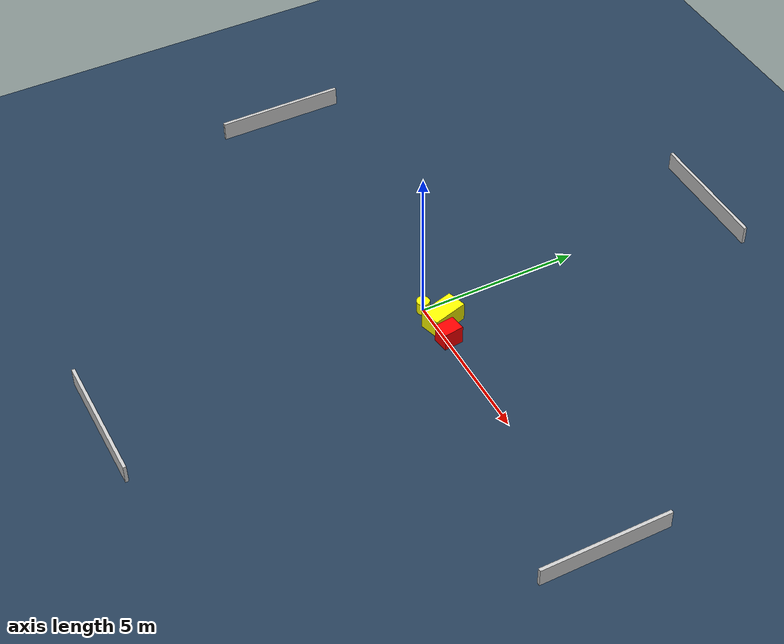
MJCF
<?xml version="1.0" ?>
<mujoco model="generated_environment">
  <option timestep="0.01" integrator="RK4" cone="elliptic"/>
  <default>
    <geom density="1"/>
  </default>
  <asset>
    <texture builtin="gradient" height="3072" name="skybox" rgb1="0.3 0.5 0.7" rgb2="0 0 0" type="skybox" width="512"/>
    <texture builtin="checker" height="300" name="groundplane" rgb1="0.2 0.3 0.4" rgb2="0.1 0.2 0.3" type="2d" width="300"/>
    <material name="groundplane" reflectance="0.2" texrepeat="5 5" texture="groundplane"/>
  </asset>
  <worldbody>
    <light dir="0 0 -1" directional="true" pos="0 0 1.5"/>
    <geom condim="3" friction="0.5 0.005 0.001" material="groundplane" name="floor" pos="0 0 0" size="0 0 0.05" type="plane"/>
    <body name="walls">
      <geom name="wall_1" condim="4" pos="-10.0 0.0 0.3" rgba="0.800000011920929 0.800000011920929 0.800000011920929 1.0" size="0.05 2.0 0.3" type="box"/>
      <geom name="wall_2" condim="4" pos="10.0 0.0 0.3" rgba="0.800000011920929 0.800000011920929 0.800000011920929 1.0" size="0.05 2.0 0.3" type="box"/>
      <geom name="wall_3" condim="4" pos="0.0 -10.0 0.3" rgba="0.800000011920929 0.800000011920929 0.800000011920929 1.0" size="2.0 0.05 0.3" type="box"/>
      <geom name="wall_4" condim="4" pos="0.0 10.0 0.3" rgba="0.800000011920929 0.800000011920929 0.800000011920929 1.0" size="2.0 0.05 0.3" type="box"/>
    </body>
    <body name="robot">
      <joint name="joint_x" type="slide" pos="0 0 0" axis="1 0 0"/>
      <joint name="joint_y" type="slide" pos="0 0 0" axis="0 1 0"/>
      <geom name="robot" type="cylinder" pos="0.0 0.0 0.2" size="0.2 0.2 0.0" mass="5.0" friction="1.0 0.005 0.0001" condim="4" rgba="1.0 1.0 0.0 1.0"/>
    </body>
    <body name="obstacle_1_movable">
      <geom name="obstacle_1_movable" condim="4" pos="0.7070220066010702 0.2807402276322942 0.3" euler="0 0 15.881720560158303" friction="0.0 0.005 0.001" rgba="1.0 1.0 0.0 1.0" size="0.31148822782509356 0.5551705177857286 0.3" type="box" mass="0.1"/>
      <joint type="free"/>
    </body>
    <body name="obstacle_2_static">
      <geom name="obstacle_2_static" condim="4" pos="1.438883620413805 0.07753218821004675 0.3" euler="0 0 277.0340759266537" friction="0.0 0.005 0.001" rgba="1.0 0.0 0.0 1.0" size="0.30735107420340146 0.25451829476171745 0.3" type="box"/>
    </body>
  </worldbody>
  <actuator>
    <motor name="actuator_x" joint="joint_x" gear="1" ctrlrange="-1 1"/>
    <motor name="actuator_y" joint="joint_y" gear="1" ctrlrange="-1 1"/>
  </actuator>
</mujoco>
